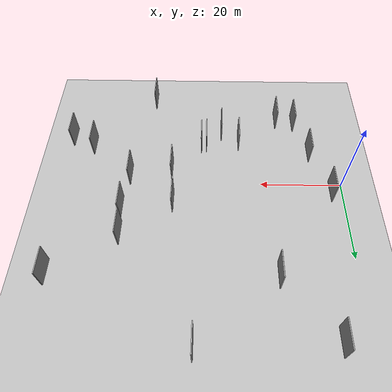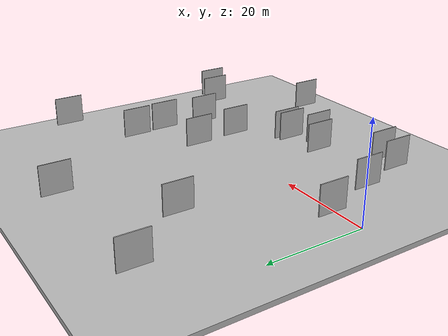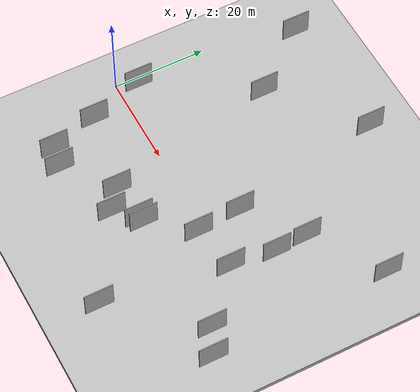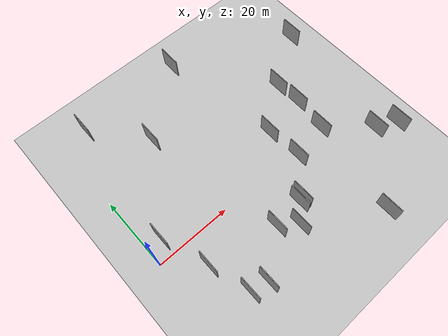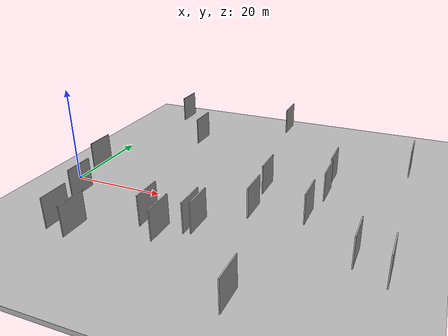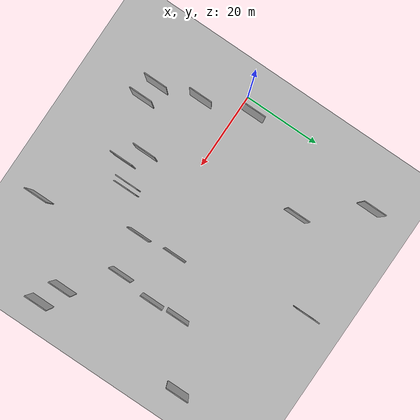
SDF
<?xml version="1.0" encoding="utf-8"?>

<sdf version="1.6">

   <world name="default">

      <gui fullscreen="0">

         <camera name="user_camera">

            <pose>-15 0 4.57585 0 0 0</pose>

            <view_controller>orbit</view_controller>

         </camera>

      </gui>

      <scene>

         <sky>

           <clouds>

             <speed>12</speed>

           </clouds>

         </sky>

         <ambient>0.4 0.4 0.4 1</ambient>

         <background>0.7 0.7 0.7 1</background>

         <shadows>1</shadows>

      </scene>

      <gravity>0 0 -9.8066</gravity>

      <magnetic_field>6e-06 2.3e-05 -4.2e-05</magnetic_field>

      <physics default="0" name="default_physics" type="ode">

         <ode>

            <solver>

               <type>quick</type>

               <iters>10</iters>

               <sor>1.0</sor>

               <use_dynamic_moi_rescaling>0</use_dynamic_moi_rescaling>

            </solver>

            <constraints>

               <cfm>0</cfm>

               <erp>0.2</erp>

               <contact_max_correcting_vel>100</contact_max_correcting_vel>

               <contact_surface_layer>0.001</contact_surface_layer>

            </constraints>

         </ode>

         <max_step_size>0.004</max_step_size>

         <real_time_factor>1</real_time_factor>

         <real_time_update_rate>250</real_time_update_rate>

      </physics>

      <light name="sun" type="directional">

         <cast_shadows>1</cast_shadows>

         <pose>0 0 10 0 0 0</pose>

         <diffuse>0.8 0.8 0.8 1</diffuse>

         <specular>0.2 0.2 0.2 1</specular>

         <attenuation>

            <range>1000</range>

            <constant>0.9</constant>

            <linear>0.01</linear>

            <quadratic>0.001</quadratic>

         </attenuation>

         <direction>-0.5 0.1 -0.9</direction>

      </light>

      <include>

         <name>ground_plane_1</name>

         <uri>model://HANNAS_ground_plane</uri>

         <pose>0 0 0  0 0 0</pose>

      </include>

      <include>

         <name>ground_plane_2</name>

         <uri>model://HANNAS_ground_plane</uri>

         <pose>100 0 0  0 0 0</pose>

      </include>

      <model name="HANNAS_wall_1">

         <static>1</static>

         <pose frame="">17.8033 25.2054 2.5 0.000000 0.000000 1.570796</pose>

         <link name="link">

            <pose frame="">0 0 3.00 0 0 0</pose>

            <collision name="collision">

               <geometry>

                  <box>

                     <size>6.00 0.2 6.00</size>

                  </box>

               </geometry>

               <max_contacts>10</max_contacts>

               <surface>

                  <contact>

                     <ode/>

                  </contact>

                  <bounce/>

                  <friction>

                     <torsional>

                        <ode/>

                     </torsional>

                     <ode/>

                  </friction>

               </surface>

            </collision>

            <visual name="visual">

               <cast_shadows>0</cast_shadows>

               <geometry>

                  <box>

                     <size>6.00 0.2 6.00</size>

                  </box>

               </geometry>

               <material>

                  <script>

                     <uri>model://HANNAS_wall/materials/scripts</uri>

                     <uri>model://HANNAS_wall/materials/textures</uri>

                     <name>vrc/HANNAS_wall</name>

                  </script>

               </material>

            </visual>

            <self_collide>0</self_collide>

            <enable_wind>0</enable_wind>

            <kinematic>0</kinematic>

         </link>

      </model>

      <model name="HANNAS_wall_2">

         <static>1</static>

         <pose frame="">41.2191 7.0186 2.5 0.000000 0.000000 1.570796</pose>

         <link name="link">

            <pose frame="">0 0 3.00 0 0 0</pose>

            <collision name="collision">

               <geometry>

                  <box>

                     <size>6.00 0.2 6.00</size>

                  </box>

               </geometry>

               <max_contacts>10</max_contacts>

               <surface>

                  <contact>

                     <ode/>

                  </contact>

                  <bounce/>

                  <friction>

                     <torsional>

                        <ode/>

                     </torsional>

                     <ode/>

                  </friction>

               </surface>

            </collision>

            <visual name="visual">

               <cast_shadows>0</cast_shadows>

               <geometry>

                  <box>

                     <size>6.00 0.2 6.00</size>

                  </box>

               </geometry>

               <material>

                  <script>

                     <uri>model://HANNAS_wall/materials/scripts</uri>

                     <uri>model://HANNAS_wall/materials/textures</uri>

                     <name>vrc/HANNAS_wall</name>

                  </script>

               </material>

            </visual>

            <self_collide>0</self_collide>

            <enable_wind>0</enable_wind>

            <kinematic>0</kinematic>

         </link>

      </model>

      <model name="HANNAS_wall_3">

         <static>1</static>

         <pose frame="">47.5766 -26.5943 2.5 0.000000 0.000000 1.570796</pose>

         <link name="link">

            <pose frame="">0 0 3.00 0 0 0</pose>

            <collision name="collision">

               <geometry>

                  <box>

                     <size>6.00 0.2 6.00</size>

                  </box>

               </geometry>

               <max_contacts>10</max_contacts>

               <surface>

                  <contact>

                     <ode/>

                  </contact>

                  <bounce/>

                  <friction>

                     <torsional>

                        <ode/>

                     </torsional>

                     <ode/>

                  </friction>

               </surface>

            </collision>

            <visual name="visual">

               <cast_shadows>0</cast_shadows>

               <geometry>

                  <box>

                     <size>6.00 0.2 6.00</size>

                  </box>

               </geometry>

               <material>

                  <script>

                     <uri>model://HANNAS_wall/materials/scripts</uri>

                     <uri>model://HANNAS_wall/materials/textures</uri>

                     <name>vrc/HANNAS_wall</name>

                  </script>

               </material>

            </visual>

            <self_collide>0</self_collide>

            <enable_wind>0</enable_wind>

            <kinematic>0</kinematic>

         </link>

      </model>

      <model name="HANNAS_wall_4">

         <static>1</static>

         <pose frame="">33.5749 -11.2108 2.5 0.000000 0.000000 1.570796</pose>

         <link name="link">

            <pose frame="">0 0 3.00 0 0 0</pose>

            <collision name="collision">

               <geometry>

                  <box>

                     <size>6.00 0.2 6.00</size>

                  </box>

               </geometry>

               <max_contacts>10</max_contacts>

               <surface>

                  <contact>

                     <ode/>

                  </contact>

                  <bounce/>

                  <friction>

                     <torsional>

                        <ode/>

                     </torsional>

                     <ode/>

                  </friction>

               </surface>

            </collision>

            <visual name="visual">

               <cast_shadows>0</cast_shadows>

               <geometry>

                  <box>

                     <size>6.00 0.2 6.00</size>

                  </box>

               </geometry>

               <material>

                  <script>

                     <uri>model://HANNAS_wall/materials/scripts</uri>

                     <uri>model://HANNAS_wall/materials/textures</uri>

                     <name>vrc/HANNAS_wall</name>

                  </script>

               </material>

            </visual>

            <self_collide>0</self_collide>

            <enable_wind>0</enable_wind>

            <kinematic>0</kinematic>

         </link>

      </model>

      <model name="HANNAS_wall_5">

         <static>1</static>

         <pose frame="">10.8724 -18.7502 2.5 0.000000 0.000000 1.570796</pose>

         <link name="link">

            <pose frame="">0 0 3.00 0 0 0</pose>

            <collision name="collision">

               <geometry>

                  <box>

                     <size>6.00 0.2 6.00</size>

                  </box>

               </geometry>

               <max_contacts>10</max_contacts>

               <surface>

                  <contact>

                     <ode/>

                  </contact>

                  <bounce/>

                  <friction>

                     <torsional>

                        <ode/>

                     </torsional>

                     <ode/>

                  </friction>

               </surface>

            </collision>

            <visual name="visual">

               <cast_shadows>0</cast_shadows>

               <geometry>

                  <box>

                     <size>6.00 0.2 6.00</size>

                  </box>

               </geometry>

               <material>

                  <script>

                     <uri>model://HANNAS_wall/materials/scripts</uri>

                     <uri>model://HANNAS_wall/materials/textures</uri>

                     <name>vrc/HANNAS_wall</name>

                  </script>

               </material>

            </visual>

            <self_collide>0</self_collide>

            <enable_wind>0</enable_wind>

            <kinematic>0</kinematic>

         </link>

      </model>

      <model name="HANNAS_wall_6">

         <static>1</static>

         <pose frame="">53.0386 8.7296 2.5 0.000000 0.000000 1.570796</pose>

         <link name="link">

            <pose frame="">0 0 3.00 0 0 0</pose>

            <collision name="collision">

               <geometry>

                  <box>

                     <size>6.00 0.2 6.00</size>

                  </box>

               </geometry>

               <max_contacts>10</max_contacts>

               <surface>

                  <contact>

                     <ode/>

                  </contact>

                  <bounce/>

                  <friction>

                     <torsional>

                        <ode/>

                     </torsional>

                     <ode/>

                  </friction>

               </surface>

            </collision>

            <visual name="visual">

               <cast_shadows>0</cast_shadows>

               <geometry>

                  <box>

                     <size>6.00 0.2 6.00</size>

                  </box>

               </geometry>

               <material>

                  <script>

                     <uri>model://HANNAS_wall/materials/scripts</uri>

                     <uri>model://HANNAS_wall/materials/textures</uri>

                     <name>vrc/HANNAS_wall</name>

                  </script>

               </material>

            </visual>

            <self_collide>0</self_collide>

            <enable_wind>0</enable_wind>

            <kinematic>0</kinematic>

         </link>

      </model>

      <model name="HANNAS_wall_7">

         <static>1</static>

         <pose frame="">25.4214 -11.9748 2.5 0.000000 0.000000 1.570796</pose>

         <link name="link">

            <pose frame="">0 0 3.00 0 0 0</pose>

            <collision name="collision">

               <geometry>

                  <box>

                     <size>6.00 0.2 6.00</size>

                  </box>

               </geometry>

               <max_contacts>10</max_contacts>

               <surface>

                  <contact>

                     <ode/>

                  </contact>

                  <bounce/>

                  <friction>

                     <torsional>

                        <ode/>

                     </torsional>

                     <ode/>

                  </friction>

               </surface>

            </collision>

            <visual name="visual">

               <cast_shadows>0</cast_shadows>

               <geometry>

                  <box>

                     <size>6.00 0.2 6.00</size>

                  </box>

               </geometry>

               <material>

                  <script>

                     <uri>model://HANNAS_wall/materials/scripts</uri>

                     <uri>model://HANNAS_wall/materials/textures</uri>

                     <name>vrc/HANNAS_wall</name>

                  </script>

               </material>

            </visual>

            <self_collide>0</self_collide>

            <enable_wind>0</enable_wind>

            <kinematic>0</kinematic>

         </link>

      </model>

      <model name="HANNAS_wall_8">

         <static>1</static>

         <pose frame="">34.8385 -10.8383 2.5 0.000000 0.000000 1.570796</pose>

         <link name="link">

            <pose frame="">0 0 3.00 0 0 0</pose>

            <collision name="collision">

               <geometry>

                  <box>

                     <size>6.00 0.2 6.00</size>

                  </box>

               </geometry>

               <max_contacts>10</max_contacts>

               <surface>

                  <contact>

                     <ode/>

                  </contact>

                  <bounce/>

                  <friction>

                     <torsional>

                        <ode/>

                     </torsional>

                     <ode/>

                  </friction>

               </surface>

            </collision>

            <visual name="visual">

               <cast_shadows>0</cast_shadows>

               <geometry>

                  <box>

                     <size>6.00 0.2 6.00</size>

                  </box>

               </geometry>

               <material>

                  <script>

                     <uri>model://HANNAS_wall/materials/scripts</uri>

                     <uri>model://HANNAS_wall/materials/textures</uri>

                     <name>vrc/HANNAS_wall</name>

                  </script>

               </material>

            </visual>

            <self_collide>0</self_collide>

            <enable_wind>0</enable_wind>

            <kinematic>0</kinematic>

         </link>

      </model>

      <model name="HANNAS_wall_9">

         <static>1</static>

         <pose frame="">51.8565 -0.7066 2.5 0.000000 0.000000 1.570796</pose>

         <link name="link">

            <pose frame="">0 0 3.00 0 0 0</pose>

            <collision name="collision">

               <geometry>

                  <box>

                     <size>6.00 0.2 6.00</size>

                  </box>

               </geometry>

               <max_contacts>10</max_contacts>

               <surface>

                  <contact>

                     <ode/>

                  </contact>

                  <bounce/>

                  <friction>

                     <torsional>

                        <ode/>

                     </torsional>

                     <ode/>

                  </friction>

               </surface>

            </collision>

            <visual name="visual">

               <cast_shadows>0</cast_shadows>

               <geometry>

                  <box>

                     <size>6.00 0.2 6.00</size>

                  </box>

               </geometry>

               <material>

                  <script>

                     <uri>model://HANNAS_wall/materials/scripts</uri>

                     <uri>model://HANNAS_wall/materials/textures</uri>

                     <name>vrc/HANNAS_wall</name>

                  </script>

               </material>

            </visual>

            <self_collide>0</self_collide>

            <enable_wind>0</enable_wind>

            <kinematic>0</kinematic>

         </link>

      </model>

      <model name="HANNAS_wall_10">

         <static>1</static>

         <pose frame="">6.8920 38.6734 2.5 0.000000 0.000000 1.570796</pose>

         <link name="link">

            <pose frame="">0 0 3.00 0 0 0</pose>

            <collision name="collision">

               <geometry>

                  <box>

                     <size>6.00 0.2 6.00</size>

                  </box>

               </geometry>

               <max_contacts>10</max_contacts>

               <surface>

                  <contact>

                     <ode/>

                  </contact>

                  <bounce/>

                  <friction>

                     <torsional>

                        <ode/>

                     </torsional>

                     <ode/>

                  </friction>

               </surface>

            </collision>

            <visual name="visual">

               <cast_shadows>0</cast_shadows>

               <geometry>

                  <box>

                     <size>6.00 0.2 6.00</size>

                  </box>

               </geometry>

               <material>

                  <script>

                     <uri>model://HANNAS_wall/materials/scripts</uri>

                     <uri>model://HANNAS_wall/materials/textures</uri>

                     <name>vrc/HANNAS_wall</name>

                  </script>

               </material>

            </visual>

            <self_collide>0</self_collide>

            <enable_wind>0</enable_wind>

            <kinematic>0</kinematic>

         </link>

      </model>

      <model name="HANNAS_wall_11">

         <static>1</static>

         <pose frame="">7.8629 -8.4507 2.5 0.000000 0.000000 1.570796</pose>

         <link name="link">

            <pose frame="">0 0 3.00 0 0 0</pose>

            <collision name="collision">

               <geometry>

                  <box>

                     <size>6.00 0.2 6.00</size>

                  </box>

               </geometry>

               <max_contacts>10</max_contacts>

               <surface>

                  <contact>

                     <ode/>

                  </contact>

                  <bounce/>

                  <friction>

                     <torsional>

                        <ode/>

                     </torsional>

                     <ode/>

                  </friction>

               </surface>

            </collision>

            <visual name="visual">

               <cast_shadows>0</cast_shadows>

               <geometry>

                  <box>

                     <size>6.00 0.2 6.00</size>

                  </box>

               </geometry>

               <material>

                  <script>

                     <uri>model://HANNAS_wall/materials/scripts</uri>

                     <uri>model://HANNAS_wall/materials/textures</uri>

                     <name>vrc/HANNAS_wall</name>

                  </script>

               </material>

            </visual>

            <self_collide>0</self_collide>

            <enable_wind>0</enable_wind>

            <kinematic>0</kinematic>

         </link>

      </model>

      <model name="HANNAS_wall_12">

         <static>1</static>

         <pose frame="">52.6440 15.5868 2.5 0.000000 0.000000 1.570796</pose>

         <link name="link">

            <pose frame="">0 0 3.00 0 0 0</pose>

            <collision name="collision">

               <geometry>

                  <box>

                     <size>6.00 0.2 6.00</size>

                  </box>

               </geometry>

               <max_contacts>10</max_contacts>

               <surface>

                  <contact>

                     <ode/>

                  </contact>

                  <bounce/>

                  <friction>

                     <torsional>

                        <ode/>

                     </torsional>

                     <ode/>

                  </friction>

               </surface>

            </collision>

            <visual name="visual">

               <cast_shadows>0</cast_shadows>

               <geometry>

                  <box>

                     <size>6.00 0.2 6.00</size>

                  </box>

               </geometry>

               <material>

                  <script>

                     <uri>model://HANNAS_wall/materials/scripts</uri>

                     <uri>model://HANNAS_wall/materials/textures</uri>

                     <name>vrc/HANNAS_wall</name>

                  </script>

               </material>

            </visual>

            <self_collide>0</self_collide>

            <enable_wind>0</enable_wind>

            <kinematic>0</kinematic>

         </link>

      </model>

      <model name="HANNAS_wall_13">

         <static>1</static>

         <pose frame="">3.7919 3.5597 2.5 0.000000 0.000000 1.570796</pose>

         <link name="link">

            <pose frame="">0 0 3.00 0 0 0</pose>

            <collision name="collision">

               <geometry>

                  <box>

                     <size>6.00 0.2 6.00</size>

                  </box>

               </geometry>

               <max_contacts>10</max_contacts>

               <surface>

                  <contact>

                     <ode/>

                  </contact>

                  <bounce/>

                  <friction>

                     <torsional>

                        <ode/>

                     </torsional>

                     <ode/>

                  </friction>

               </surface>

            </collision>

            <visual name="visual">

               <cast_shadows>0</cast_shadows>

               <geometry>

                  <box>

                     <size>6.00 0.2 6.00</size>

                  </box>

               </geometry>

               <material>

                  <script>

                     <uri>model://HANNAS_wall/materials/scripts</uri>

                     <uri>model://HANNAS_wall/materials/textures</uri>

                     <name>vrc/HANNAS_wall</name>

                  </script>

               </material>

            </visual>

            <self_collide>0</self_collide>

            <enable_wind>0</enable_wind>

            <kinematic>0</kinematic>

         </link>

      </model>

      <model name="HANNAS_wall_14">

         <static>1</static>

         <pose frame="">29.7500 -15.2706 2.5 0.000000 0.000000 1.570796</pose>

         <link name="link">

            <pose frame="">0 0 3.00 0 0 0</pose>

            <collision name="collision">

               <geometry>

                  <box>

                     <size>6.00 0.2 6.00</size>

                  </box>

               </geometry>

               <max_contacts>10</max_contacts>

               <surface>

                  <contact>

                     <ode/>

                  </contact>

                  <bounce/>

                  <friction>

                     <torsional>

                        <ode/>

                     </torsional>

                     <ode/>

                  </friction>

               </surface>

            </collision>

            <visual name="visual">

               <cast_shadows>0</cast_shadows>

               <geometry>

                  <box>

                     <size>6.00 0.2 6.00</size>

                  </box>

               </geometry>

               <material>

                  <script>

                     <uri>model://HANNAS_wall/materials/scripts</uri>

                     <uri>model://HANNAS_wall/materials/textures</uri>

                     <name>vrc/HANNAS_wall</name>

                  </script>

               </material>

            </visual>

            <self_collide>0</self_collide>

            <enable_wind>0</enable_wind>

            <kinematic>0</kinematic>

         </link>

      </model>

      <model name="HANNAS_wall_15">

         <static>1</static>

         <pose frame="">35.5366 39.8826 2.5 0.000000 0.000000 1.570796</pose>

         <link name="link">

            <pose frame="">0 0 3.00 0 0 0</pose>

            <collision name="collision">

               <geometry>

                  <box>

                     <size>6.00 0.2 6.00</size>

                  </box>

               </geometry>

               <max_contacts>10</max_contacts>

               <surface>

                  <contact>

                     <ode/>

                  </contact>

                  <bounce/>

                  <friction>

                     <torsional>

                        <ode/>

                     </torsional>

                     <ode/>

                  </friction>

               </surface>

            </collision>

            <visual name="visual">

               <cast_shadows>0</cast_shadows>

               <geometry>

                  <box>

                     <size>6.00 0.2 6.00</size>

                  </box>

               </geometry>

               <material>

                  <script>

                     <uri>model://HANNAS_wall/materials/scripts</uri>

                     <uri>model://HANNAS_wall/materials/textures</uri>

                     <name>vrc/HANNAS_wall</name>

                  </script>

               </material>

            </visual>

            <self_collide>0</self_collide>

            <enable_wind>0</enable_wind>

            <kinematic>0</kinematic>

         </link>

      </model>

      <model name="HANNAS_wall_16">

         <static>1</static>

         <pose frame="">67.0223 25.2797 2.5 0.000000 0.000000 1.570796</pose>

         <link name="link">

            <pose frame="">0 0 3.00 0 0 0</pose>

            <collision name="collision">

               <geometry>

                  <box>

                     <size>6.00 0.2 6.00</size>

                  </box>

               </geometry>

               <max_contacts>10</max_contacts>

               <surface>

                  <contact>

                     <ode/>

                  </contact>

                  <bounce/>

                  <friction>

                     <torsional>

                        <ode/>

                     </torsional>

                     <ode/>

                  </friction>

               </surface>

            </collision>

            <visual name="visual">

               <cast_shadows>0</cast_shadows>

               <geometry>

                  <box>

                     <size>6.00 0.2 6.00</size>

                  </box>

               </geometry>

               <material>

                  <script>

                     <uri>model://HANNAS_wall/materials/scripts</uri>

                     <uri>model://HANNAS_wall/materials/textures</uri>

                     <name>vrc/HANNAS_wall</name>

                  </script>

               </material>

            </visual>

            <self_collide>0</self_collide>

            <enable_wind>0</enable_wind>

            <kinematic>0</kinematic>

         </link>

      </model>

      <model name="HANNAS_wall_17">

         <static>1</static>

         <pose frame="">67.7770 -12.8453 2.5 0.000000 0.000000 1.570796</pose>

         <link name="link">

            <pose frame="">0 0 3.00 0 0 0</pose>

            <collision name="collision">

               <geometry>

                  <box>

                     <size>6.00 0.2 6.00</size>

                  </box>

               </geometry>

               <max_contacts>10</max_contacts>

               <surface>

                  <contact>

                     <ode/>

                  </contact>

                  <bounce/>

                  <friction>

                     <torsional>

                        <ode/>

                     </torsional>

                     <ode/>

                  </friction>

               </surface>

            </collision>

            <visual name="visual">

               <cast_shadows>0</cast_shadows>

               <geometry>

                  <box>

                     <size>6.00 0.2 6.00</size>

                  </box>

               </geometry>

               <material>

                  <script>

                     <uri>model://HANNAS_wall/materials/scripts</uri>

                     <uri>model://HANNAS_wall/materials/textures</uri>

                     <name>vrc/HANNAS_wall</name>

                  </script>

               </material>

            </visual>

            <self_collide>0</self_collide>

            <enable_wind>0</enable_wind>

            <kinematic>0</kinematic>

         </link>

      </model>

      <model name="HANNAS_wall_18">

         <static>1</static>

         <pose frame="">62.1613 -10.1446 2.5 0.000000 0.000000 1.570796</pose>

         <link name="link">

            <pose frame="">0 0 3.00 0 0 0</pose>

            <collision name="collision">

               <geometry>

                  <box>

                     <size>6.00 0.2 6.00</size>

                  </box>

               </geometry>

               <max_contacts>10</max_contacts>

               <surface>

                  <contact>

                     <ode/>

                  </contact>

                  <bounce/>

                  <friction>

                     <torsional>

                        <ode/>

                     </torsional>

                     <ode/>

                  </friction>

               </surface>

            </collision>

            <visual name="visual">

               <cast_shadows>0</cast_shadows>

               <geometry>

                  <box>

                     <size>6.00 0.2 6.00</size>

                  </box>

               </geometry>

               <material>

                  <script>

                     <uri>model://HANNAS_wall/materials/scripts</uri>

                     <uri>model://HANNAS_wall/materials/textures</uri>

                     <name>vrc/HANNAS_wall</name>

                  </script>

               </material>

            </visual>

            <self_collide>0</self_collide>

            <enable_wind>0</enable_wind>

            <kinematic>0</kinematic>

         </link>

      </model>

      <model name="HANNAS_wall_19">

         <static>1</static>

         <pose frame="">15.3770 -19.7234 2.5 0.000000 0.000000 1.570796</pose>

         <link name="link">

            <pose frame="">0 0 3.00 0 0 0</pose>

            <collision name="collision">

               <geometry>

                  <box>

                     <size>6.00 0.2 6.00</size>

                  </box>

               </geometry>

               <max_contacts>10</max_contacts>

               <surface>

                  <contact>

                     <ode/>

                  </contact>

                  <bounce/>

                  <friction>

                     <torsional>

                        <ode/>

                     </torsional>

                     <ode/>

                  </friction>

               </surface>

            </collision>

            <visual name="visual">

               <cast_shadows>0</cast_shadows>

               <geometry>

                  <box>

                     <size>6.00 0.2 6.00</size>

                  </box>

               </geometry>

               <material>

                  <script>

                     <uri>model://HANNAS_wall/materials/scripts</uri>

                     <uri>model://HANNAS_wall/materials/textures</uri>

                     <name>vrc/HANNAS_wall</name>

                  </script>

               </material>

            </visual>

            <self_collide>0</self_collide>

            <enable_wind>0</enable_wind>

            <kinematic>0</kinematic>

         </link>

      </model>

      <model name="HANNAS_wall_20">

         <static>1</static>

         <pose frame="">41.9083 -2.4762 2.5 0.000000 0.000000 1.570796</pose>

         <link name="link">

            <pose frame="">0 0 3.00 0 0 0</pose>

            <collision name="collision">

               <geometry>

                  <box>

                     <size>6.00 0.2 6.00</size>

                  </box>

               </geometry>

               <max_contacts>10</max_contacts>

               <surface>

                  <contact>

                     <ode/>

                  </contact>

                  <bounce/>

                  <friction>

                     <torsional>

                        <ode/>

                     </torsional>

                     <ode/>

                  </friction>

               </surface>

            </collision>

            <visual name="visual">

               <cast_shadows>0</cast_shadows>

               <geometry>

                  <box>

                     <size>6.00 0.2 6.00</size>

                  </box>

               </geometry>

               <material>

                  <script>

                     <uri>model://HANNAS_wall/materials/scripts</uri>

                     <uri>model://HANNAS_wall/materials/textures</uri>

                     <name>vrc/HANNAS_wall</name>

                  </script>

               </material>

            </visual>

            <self_collide>0</self_collide>

            <enable_wind>0</enable_wind>

            <kinematic>0</kinematic>

         </link>

      </model>

   </world>

</sdf>

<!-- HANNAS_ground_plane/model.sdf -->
<sdf version="1.4">
<model name="HANNAS_ground_plane">
  <static>true</static>
    <link name="link">
      <collision name="collision">
        <geometry>
          <plane>
            <normal>0 0 1</normal>
            <size>1000 1000</size>
          </plane>
        </geometry>
        <surface>
          <friction>
            <ode>
              <mu>100</mu>
              <mu2>50</mu2>
            </ode>
          </friction>
        </surface>
      </collision>
      <visual name="visual">
        <cast_shadows>false</cast_shadows>
        <geometry>
          <plane>
            <normal>0 0 1</normal>
            <size>1000 1000</size>
          </plane>
        </geometry>
        <material>
          <script>
            <uri>model://HANNAS_ground_plane/materials/scripts/HANNAS_ground_plane.material</uri>
	    <uri>model://HANNAS_ground_plane/materials/textures</uri>
            <name>HANNASGroundPlane/Image</name>
          </script>
        </material>
      </visual>
    </link>
  </model>
</sdf>
